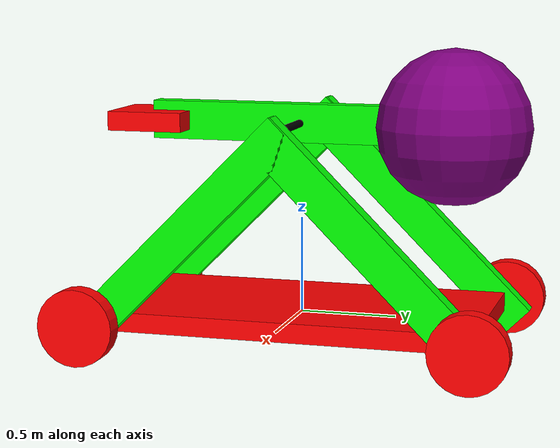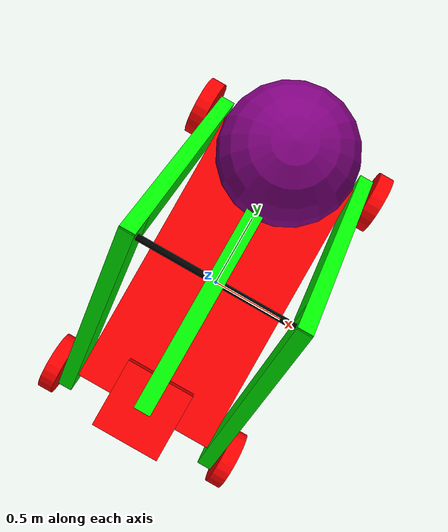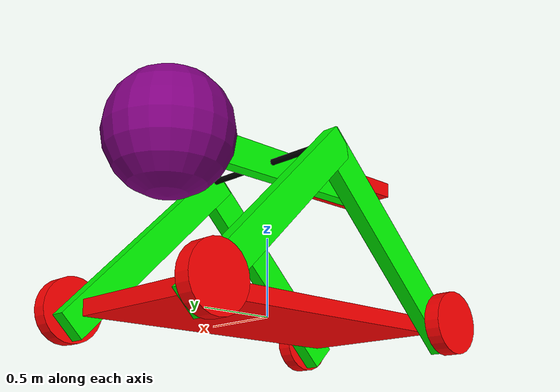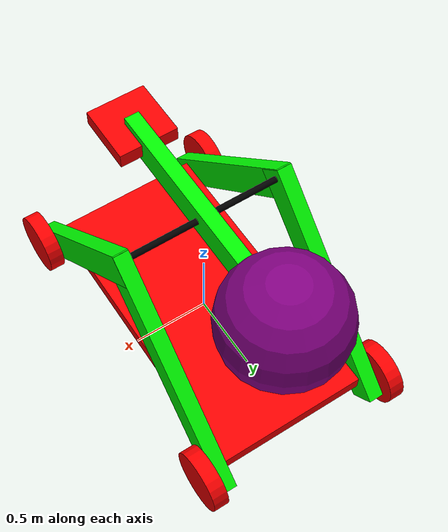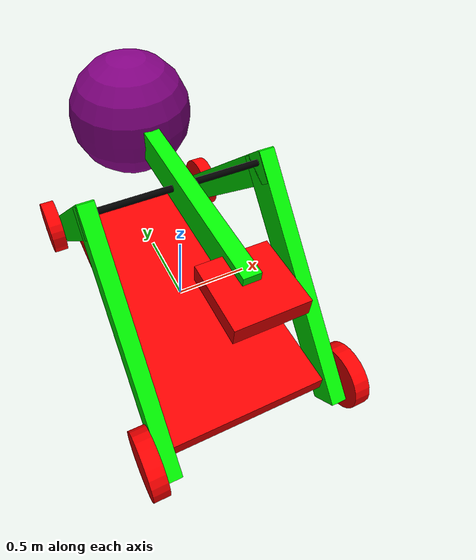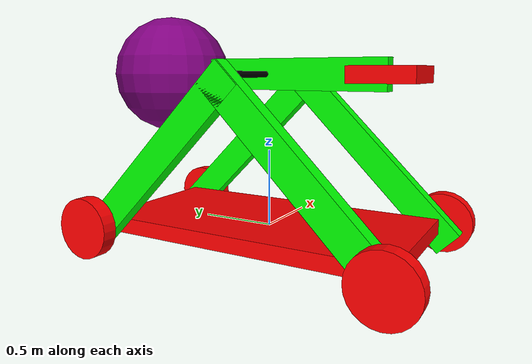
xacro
<?xml version="1.0"?>
<robot name="myfirst" xmlns:xacro="http://www.ros.org/wiki/xacro">

    <xacro:property name="pi" value="3.1415926535897931" />
    <xacro:property name="width" value="0.1" />
    <xacro:property name="radius" value="0.2" />

    <material name="red">
      <color rgba="1 0 0 1"/>
    </material>
    <material name="green">
      <color rgba="0 1 0 1"/>
    </material>
    <material name="black">
      <color rgba="0 0 0 1"/>
    </material>
    <material name="purple">
      <color rgba="0.5 0 0.5 1"/>
    </material>

    <link name="base_link">
      <visual>
        <geometry>
          <box size="1 2 0.1"/>
        </geometry>
        <material name="red"/>
      </visual>
    </link>

    <xacro:macro name="wheel" params="prefix suffix x y z reflect rd=">
      <link name="${prefix}_${suffix}_wheel">
        <visual>
          <geometry>
            <cylinder length="${width}" radius="${radius}"/>
          </geometry>
          <origin xyz="${x+width*1.5*rd} ${y} ${z}" rpy="0 ${pi/2} 0" />
          <material name="red"/>
        </visual>
      </link>

      <joint name="base_to_${prefix}_${suffix}_wheel" type="fixed">
        <parent link="base_link"/>
        <child link="${prefix}_${suffix}_wheel"/>
        <origin xyz="0 0 0"/>
      </joint>
    </xacro:macro>

    <xacro:macro name="beam" params="prefix suffix x y z reflect rd">
      <link name="${prefix}_${suffix}_beam">
        <visual>
          <geometry>
            <box size="0.1 1.6 0.2"/>
          </geometry>
          <origin xyz="${x+width/2*rd} ${y} ${z}" rpy="${reflect*pi/4} 0 0" />
          <material name="green"/>
        </visual>
      </link>

      <joint name="base_to_${prefix}_${suffix}_beam" type="fixed">
        <parent link="base_link"/>
        <child link="${prefix}_${suffix}_beam"/>
        <origin xyz="0 0 0"/>
      </joint>
    </xacro:macro>

    <link name="rotate_beam">
      <visual>
        <geometry>
          <cylinder radius="0.02" length="1"/>
        </geometry>
        <origin xyz="0 0 1" rpy="0 ${pi/2} 0" />
        <material name="black"/>
      </visual>
    </link>
    <joint name="base_to_rotate_beam" type="fixed">
      <parent link="base_link"/>
      <child link="rotate_beam"/>
      <origin xyz="0 0 0"/>
    </joint>

    <link name="counter-wheight">
      <visual>
        <geometry>
          <sphere radius="0.4"/>
        </geometry>
        <origin xyz="0 0.8 1" rpy="0 0 0" />
        <material name="purple"/>
      </visual>
    </link>
    <joint name="rotate_beam_to_counter-wheight" type="fixed">
      <parent link="rotate_beam"/>
      <child link="counter-wheight"/>
      <origin xyz="0 0 0"/>
    </joint>

    <link name="main_launch">
      <visual>
        <geometry>
          <box size="0.4 0.4 0.1"/>
        </geometry>
        <origin xyz="0 -0.8 1" rpy="0 0 0" />
        <material name="red"/>
      </visual>
    </link>
    <joint name="rotate_beam_to_main_launch" type="fixed">
      <parent link="rotate_beam"/>
      <child link="main_launch"/>
      <origin xyz="0 0 0"/>
    </joint>

    <xacro:wheel prefix="front" suffix="left" x="0.5" y="1" z="0" reflect="-1" rd="1"/>
    <xacro:wheel prefix="front" suffix="right" x="0.5" y="-1" z="0" reflect="1" rd="1"/>
    <xacro:wheel prefix="back" suffix="left" x="-0.5" y="1" z="0" reflect="-1" rd="-1"/>
    <xacro:wheel prefix="back" suffix="right" x="-0.5" y="-1" z="0" reflect="1" rd="-1"/>

    <xacro:beam prefix="front" suffix="left" x="0.5" y="0.5" z="0.45" reflect="-1" rd="1"/>
    <xacro:beam prefix="front" suffix="right" x="0.5" y="-0.5" z="0.45" reflect="1" rd="1"/>
    <xacro:beam prefix="back" suffix="left" x="-0.5" y="0.5" z="0.45" reflect="-1" rd="-1"/>
    <xacro:beam prefix="back" suffix="right" x="-0.5" y="-0.5" z="0.45" reflect="1" rd="-1"/>

    <xacro:beam prefix="main" suffix="launch" x="0" y="0" z="1" reflect="0" rd="0"/>

  </robot>
